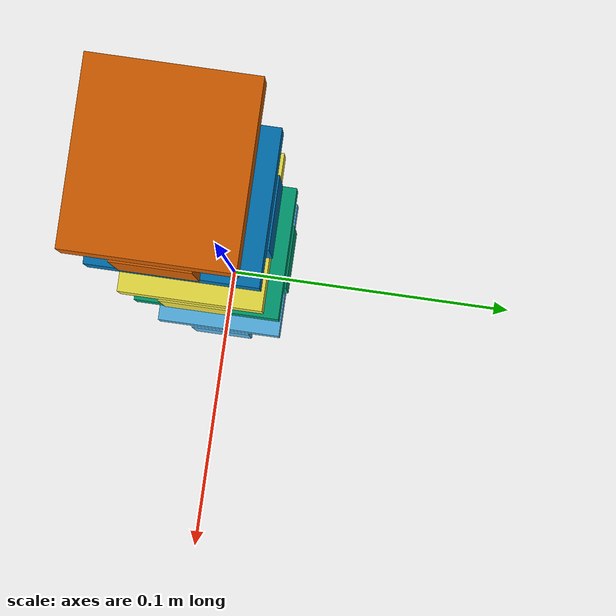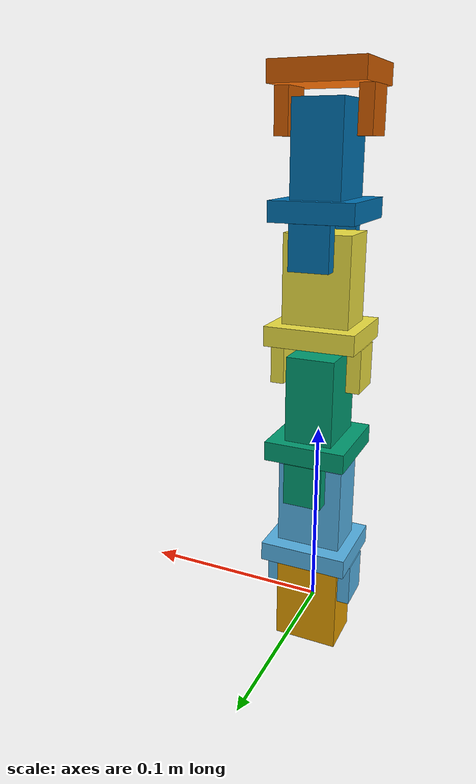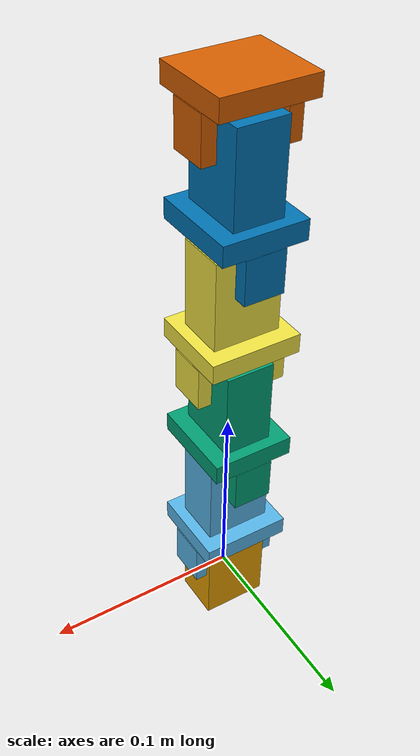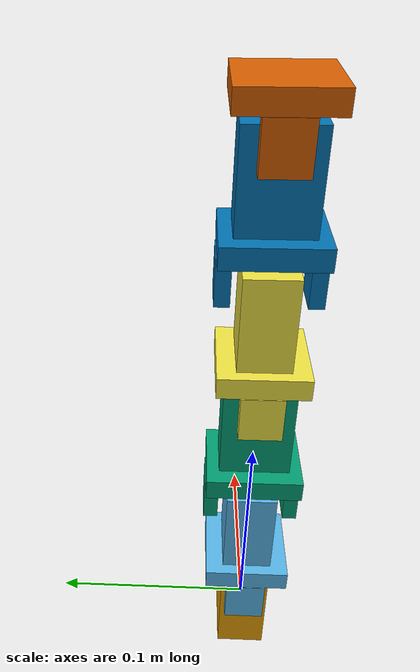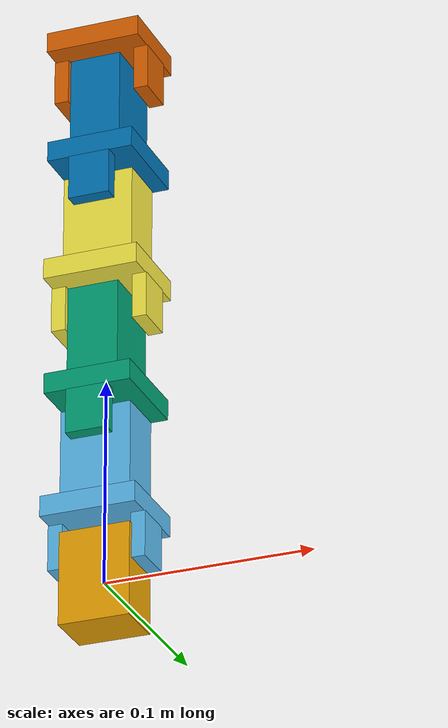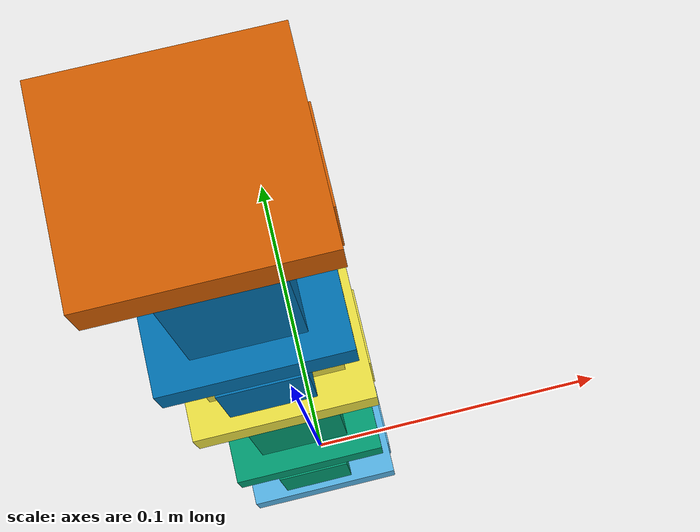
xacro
<?xml version="1.0"?>

<robot xmlns:xacro="http://www.ros.org/wiki/xacro" name="Snake5R">

    <link name="link0">
        <visual>
            <!--origin xyz="-0.0127 0 0.2" rpy="0 0 0"/-->
            <origin xyz="0 0 0" rpy="0 -1.5707 0"/>
            <geometry>
                <box size="0.0451 0.0247 0.034"/>
            </geometry>
        </visual>
    </link>

    <joint name="rotationalMotor1" type="continuous">
        <parent link="link0"/>
        <child link="link1"/>
        <axis xyz="0 0 1"/>
        <origin xyz="0 0 0.0127" rpy="0 -1.5707 0"/>
        <!--origin xyz="0 0 0.2" rpy="0 0 0"/-->
        <limit lower="-2.0943" upper="2.0943" effort="10" velocity="10"/>
    </joint>

    <xacro:macro name="visual" params="name">
        <visual>
            <origin xyz="0.047 0 0" rpy="0 0 0"/>
            <geometry>
                <box size="0.0451 0.0247 0.034"/>
            </geometry>
        </visual>
        <visual>
            <origin xyz="0.02 0 0" rpy="0 0 0"/>
            <geometry>
                <box size="0.01 0.042 0.046"/>
            </geometry>
        </visual>
        <visual>
            <origin xyz="0.004 0 -0.02" rpy="0 0 0"/>
            <geometry>
                <box size="0.022 0.02 0.007"/>
            </geometry>
        </visual>
        <visual>
            <origin xyz="0.004 0 0.02" rpy="0 0 0"/>
            <geometry>
                <box size="0.022 0.02 0.007"/>
            </geometry>
        </visual>
    </xacro:macro>

    <link name="link1">
        <xacro:visual name="link1_visual"/>
    </link>

    <joint name="rotationalMotor2" type="continuous">
        <parent link="link1"/>
        <child link="link2"/>
        <axis xyz="0 0 1"/>
        <origin xyz="0.06 0 0" rpy="1.5707 0 0"/>
        <limit lower="-2.0943" upper="2.0943" effort="10" velocity="10"/>
    </joint>

    <link name="link2">
        <xacro:visual name="link2_visual"/>
    </link>

    <joint name="rotationalMotor3" type="continuous">
        <parent link="link2"/>
        <child link="link3"/>
        <axis xyz="0 0 1"/>
        <origin xyz="0.06 0 0" rpy="-1.5707 0 0"/>
        <limit lower="-2.0943" upper="2.0943" effort="10" velocity="10"/>
    </joint>

    <link name="link3">
        <xacro:visual name="link3_visual"/>
    </link>

    <joint name="rotationalMotor4" type="continuous">
        <parent link="link3"/>
        <child link="link4"/>
        <axis xyz="0 0 1"/>
        <origin xyz="0.06 0 0" rpy="1.5707 0 0"/>
        <limit lower="-2.0943" upper="2.0943" effort="10" velocity="10"/>
    </joint>

    <link name="link4">
        <xacro:visual name="link4_visual"/>
    </link>

    <joint name="rotationalMotor5" type="continuous">
        <parent link="link4"/>
        <child link="link5"/>
        <axis xyz="0 0 1"/>
        <origin xyz="0.06 0 0" rpy="-1.5707 0 0"/>
        <limit lower="-2.0943" upper="2.0943" effort="10" velocity="10"/>
    </joint>

    <link name="link5">
        <visual>
            <origin xyz="0.02 0 0" rpy="0 0 0"/>
            <geometry>
                <box size="0.01 0.042 0.046"/>
            </geometry>
        </visual>
        <visual>
            <origin xyz="0.004 0 -0.02" rpy="0 0 0"/>
            <geometry>
                <box size="0.022 0.02 0.007"/>
            </geometry>
        </visual>
        <visual>
            <origin xyz="0.004 0 0.02" rpy="0 0 0"/>
            <geometry>
                <box size="0.022 0.02 0.007"/>
            </geometry>
        </visual>
    </link>

    <joint name="endEffFrame" type="fixed">
        <parent link="link5"/>
        <child link="endEffector"/>
        <axis xyz="0 0 1"/>
        <origin xyz="0.02 0 0" rpy="0 0 0"/>
    </joint>

    <link name="endEffector"></link>
</robot>
